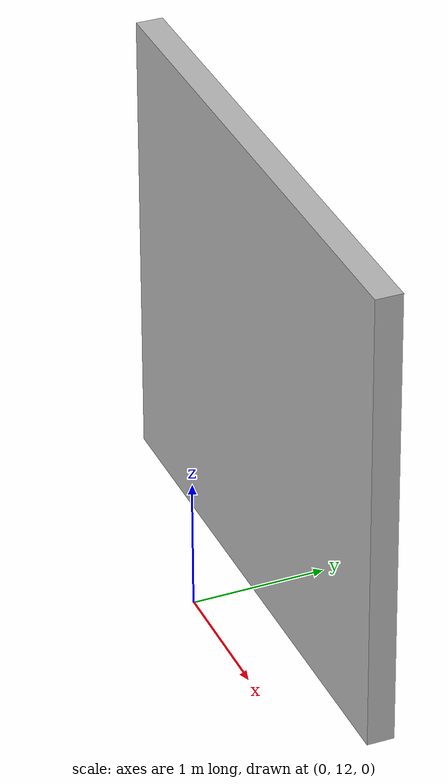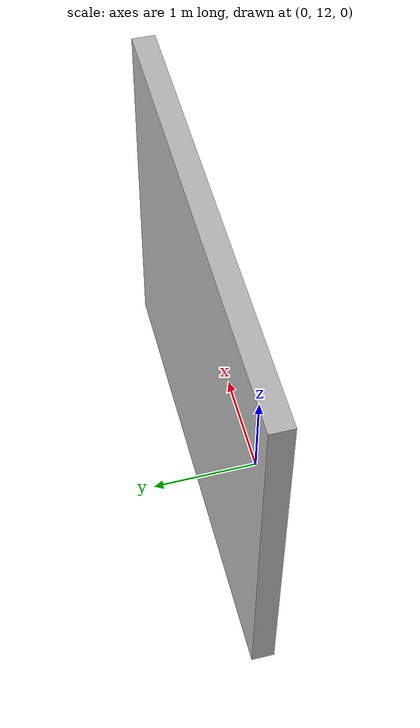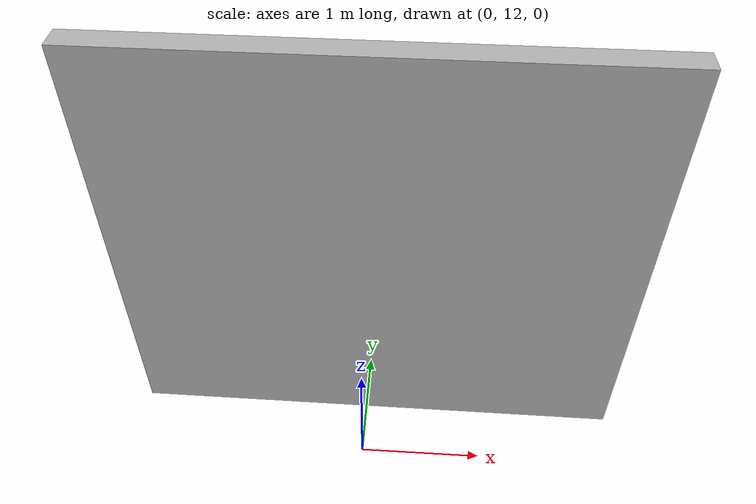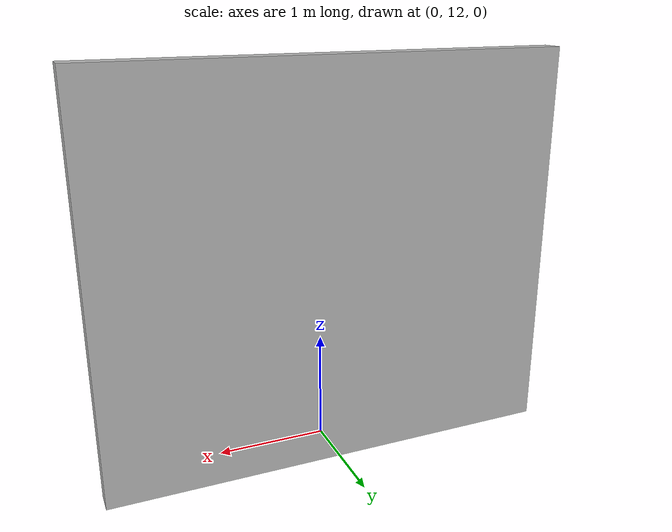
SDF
<?xml version="1.0"?>
<sdf version="1.5">
    <model name="house1">
        <static>true</static>
        <link name="link">
            <collision name="collision1">
                <pose>0 12.5 0 0 0 0</pose>
                <geometry>
                    <mesh>
                        <uri>model://house_scene_1_wall/meshes/scene_1_wall.dae</uri>
                    </mesh>
                </geometry>
            </collision>
            <visual name="visual_walls1">
              <pose>0 12.5 0 0 0 0</pose>
              <geometry>
              <mesh>
                 <uri>model://house_scene_1_wall/meshes/scene_1_wall.dae</uri>
              </mesh>
              </geometry>
              <material>
                  <script>
                      <uri>model://house_scene_1_wall/materials/scripts</uri>
                      <uri>model://house_scene_1_wall/materials/textures</uri>
                      <name>houseMat/Diffuse</name>
                  </script>
              </material>
             </visual>

        </link>
    </model>
</sdf>
